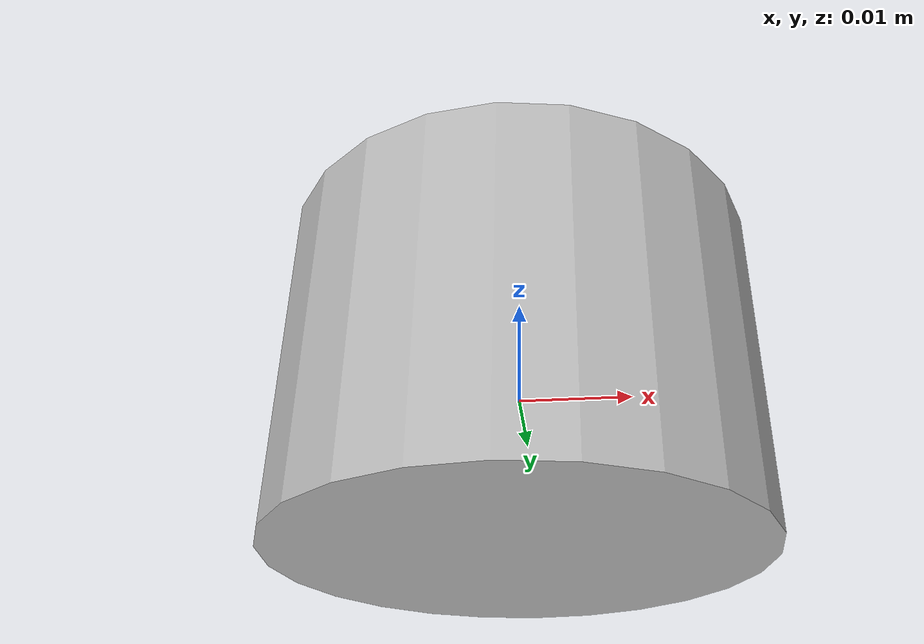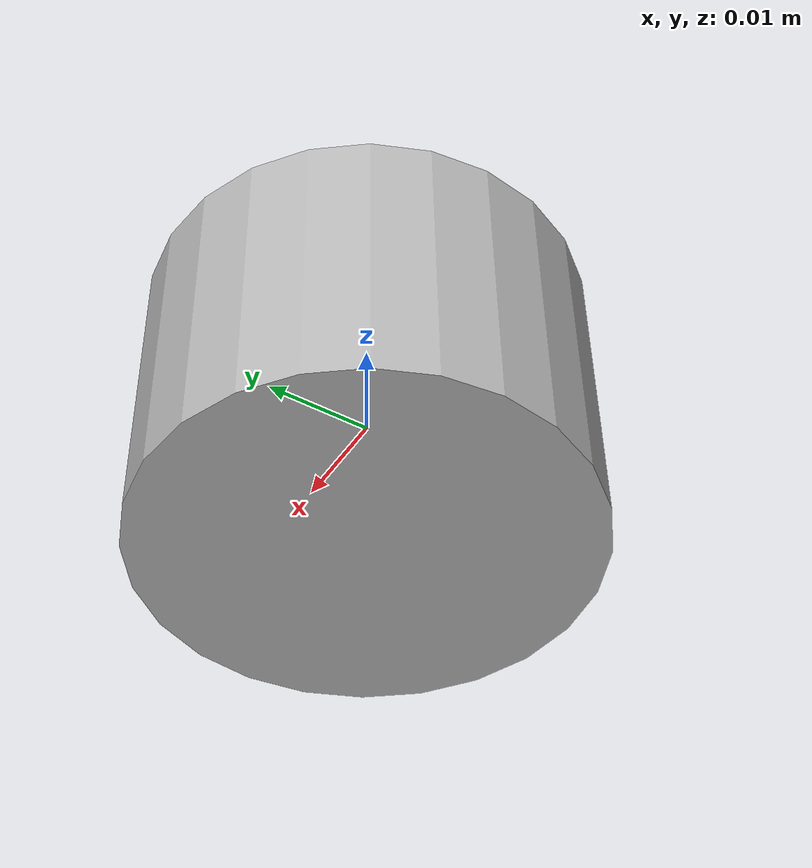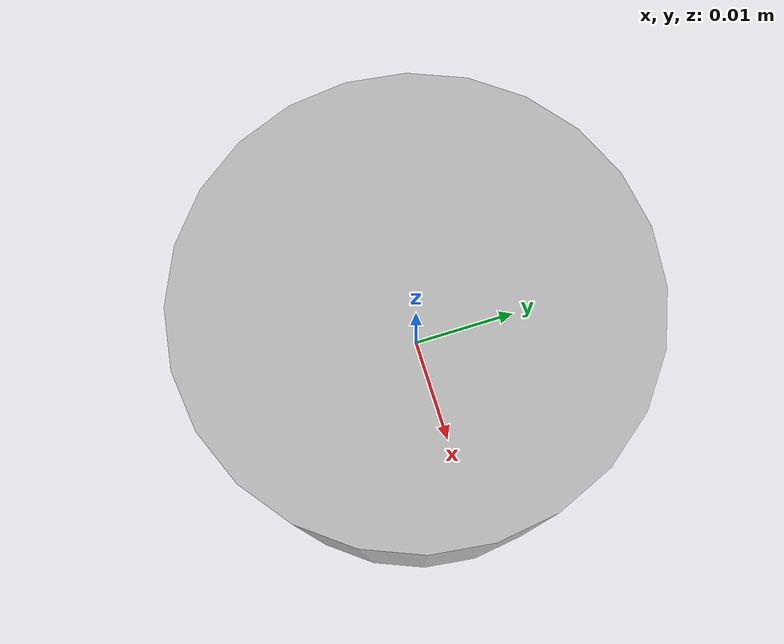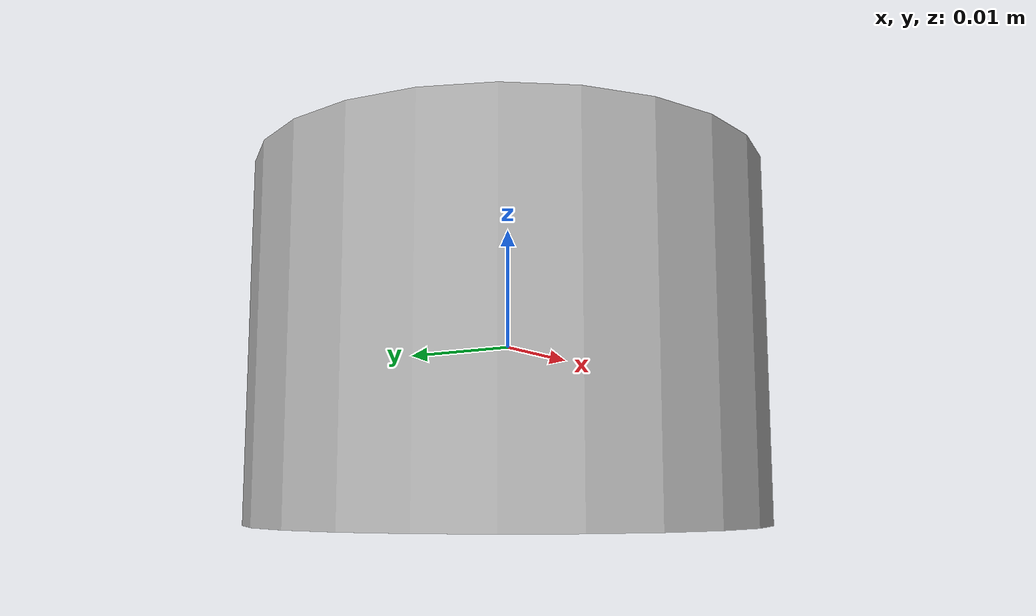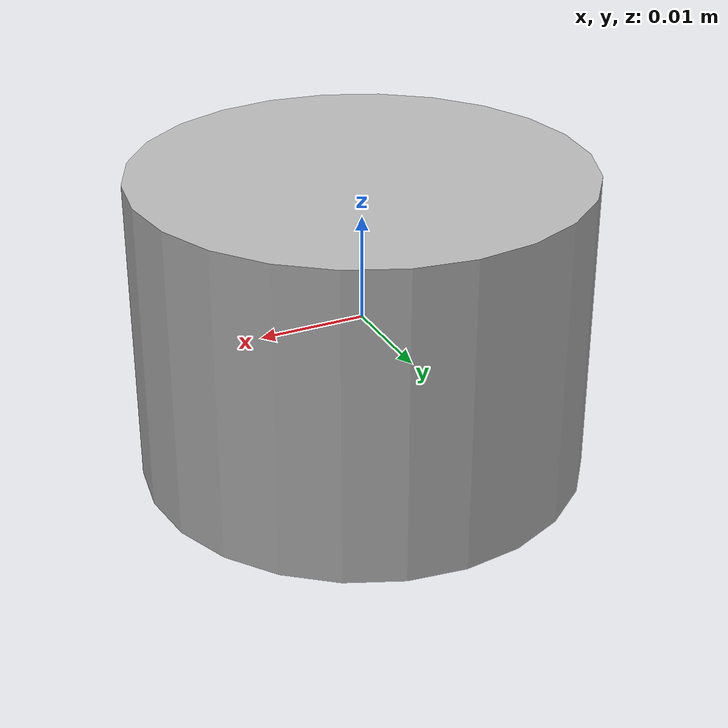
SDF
<?xml version='1.0'?>
<sdf version='1.6'>
    <model name='bimi_cam'>
      <pose>0 0 0 0 -0 0</pose>
      <link name='cam_link'>
        <inertial>
          <mass>0.1</mass>
        </inertial>
        <visual name='visual'>
          <geometry>
            <cylinder>
              <radius>0.021</radius>
              <length>0.029</length>
            </cylinder>
          </geometry>
        </visual>
        <collision name='collision'>
          <pose>0 0 0 0 -0 0</pose>
          <geometry>
            <cylinder>
              <radius>0.021</radius>
              <length>0.029</length>
            </cylinder>
          </geometry>
        </collision>
        <sensor name='camera' type='camera'>
          <pose>0 0 0 0 -0 0</pose>
          <camera name='__default__'>
            <horizontal_fov>1.047</horizontal_fov>
            <image>
              <width>320</width>
              <height>240</height>
            </image>
            <clip>
              <near>0.1</near>
              <far>100</far>
            </clip>
            <lens>
              <type>custom</type>
              <custom_function>
                <c1>1.05</c1>
                <c2>4</c2>
                <f>1</f>
                <fun>tan</fun>
              </custom_function>
              <scale_to_hfov>1</scale_to_hfov>
              <cutoff_angle>3.1415</cutoff_angle>
              <env_texture_size>1080</env_texture_size>
            </lens>
          </camera>
          <always_on>1</always_on>
          <update_rate>30</update_rate>
          <visualize>1</visualize>
          <plugin name='camera_plugin' filename='libgazebo_ros_camera.so'>
              <robotNamespace></robotNamespace>
            <alwaysOn>true</alwaysOn>
            <imageTopicName>/bimi_cam/image_raw</imageTopicName>
            <cameraInfoTopicName>camera_info</cameraInfoTopicName>
            <updateRate>30.0</updateRate>
            <cameraName>usb_cam</cameraName>
            <frameName>/robot_camera_link</frameName>
            <CxPrime>320.5</CxPrime>
            <Cx>320.5</Cx>
            <Cy>240.5</Cy>
            <hackBaseline>0</hackBaseline>
            <focalLength>277.191356</focalLength>
            <distortionK1>0.0</distortionK1>
            <distortionK2>0.0</distortionK2>
            <distortionK3>0.0</distortionK3>
            <distortionT1>0.0</distortionT1>
            <distortionT2>0.0</distortionT2>
          </plugin>
          <!-- GStreamer camera plugin (needs a lot of CPU! Consider lowering the
             camera image size) -->
          <plugin name="GstCameraPlugin" filename="libgazebo_gst_camera_plugin.so">
            <robotNamespace></robotNamespace>
            <udpPort>5600</udpPort>
          </plugin>
        </sensor>
      </link>
  </model>
</sdf>
